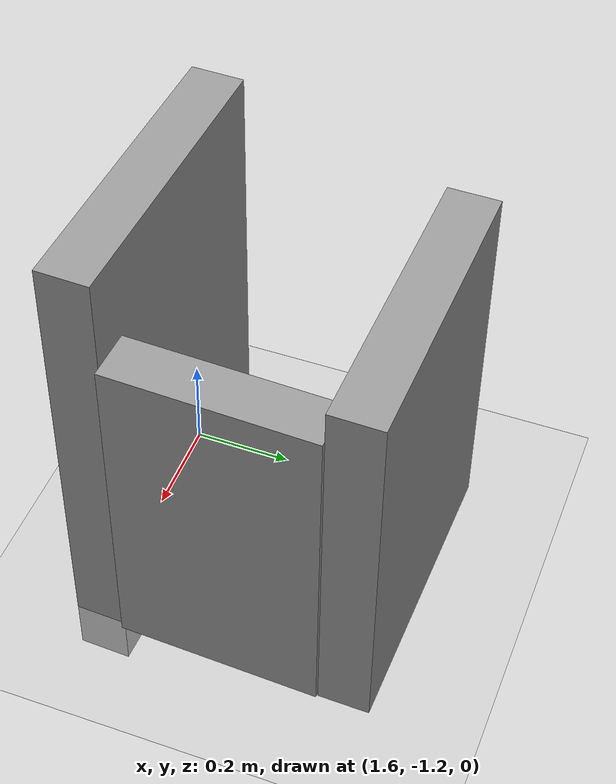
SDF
<sdf version="1.6">
 <world name="default">
  <light name="sun" type="directional">
   <pose>0 0 10 0 -0 0</pose>
   <diffuse>0.8 0.8 0.8 1</diffuse>
   <specular>0.2 0.2 0.2 1</specular>
   <attenuation>
    <range>1000</range>
    <constant>0.9</constant>
    <linear>0.01</linear>
    <quadratic>0.001</quadratic>
   </attenuation>
   <direction>-0.5 0.1 -0.9</direction>
  </light>
  <model name="ground_plane">
   <static>1</static>
   <link name="link">
    <collision name="collision">
     <geometry><plane><normal>0 0 1</normal><size>100 100</size></plane></geometry>
     <surface><friction><ode><mu>100</mu><mu2>50</mu2></ode></friction></surface>
    </collision>
    <visual name="visual">
     <cast_shadows>0</cast_shadows>
     <geometry><plane><normal>0 0 1</normal><size>100 100</size></plane></geometry>
     <material>
      <script><uri>file://media/materials/scripts/gazebo.material</uri><name>Gazebo/Grey</name></script>
     </material>
    </visual>
   </link>
  </model>
  <gravity>0 0 -9.8</gravity>
  <magnetic_field>6e-06 2.3e-05 -4.2e-05</magnetic_field>
  <atmosphere type="adiabatic"/>
  <physics name="default_physics" default="0" type="ode">
   <max_step_size>0.001</max_step_size>
   <real_time_factor>1</real_time_factor>
   <real_time_update_rate>1000</real_time_update_rate>
  </physics>
  <scene><ambient>0.4 0.4 0.4 1</ambient><background>0.7 0.7 0.7 1</background><shadows>1</shadows></scene>
  <audio><device>default</device></audio>
  <spherical_coordinates>
   <surface_model>EARTH_WGS84</surface_model>
   <latitude_deg>0</latitude_deg>
   <longitude_deg>0</longitude_deg>
   <elevation>0</elevation>
   <heading_deg>0</heading_deg>
  </spherical_coordinates>
  <model name="line04">
   <link name="link">
    <inertial>
     <mass>1</mass>
     <inertia>
      <ixx>0.166667</ixx>
      <ixy>0</ixy>
      <ixz>0</ixz>
      <iyy>0.166667</iyy>
      <iyz>0</iyz>
      <izz>0.166667</izz>
     </inertia>
    </inertial>
    <visual name="visual">
     <geometry><box><size>0.407583 0.100034 0.702887</size></box></geometry>
     <material>
      <script><name>Gazebo/Grey</name><uri>file://media/materials/scripts/gazebo.material</uri></script>
     </material>
    </visual>
    <collision name="collision">
     <geometry><box><size>0.407583 0.100034 0.702887</size></box></geometry>
     <surface>
      <friction>
       <ode><mu>1</mu><mu2>1</mu2><fdir1>0 0 0</fdir1><slip1>0</slip1><slip2>0</slip2></ode>
       <torsional>
        <coefficient>1</coefficient>
        <patch_radius>0</patch_radius>
        <surface_radius>0</surface_radius>
        <use_patch_radius>1</use_patch_radius>
        <ode><slip>0</slip></ode>
       </torsional>
      </friction>
      <bounce><restitution_coefficient>0</restitution_coefficient><threshold>1e+06</threshold></bounce>
      <contact>
       <collide_without_contact>0</collide_without_contact>
       <collide_without_contact_bitmask>1</collide_without_contact_bitmask>
       <collide_bitmask>1</collide_bitmask>
       <ode>
        <soft_cfm>0</soft_cfm>
        <soft_erp>0.2</soft_erp>
        <kp>1e+13</kp>
        <kd>1</kd>
        <max_vel>0.01</max_vel>
        <min_depth>0</min_depth>
       </ode>
       <bullet>
        <split_impulse>1</split_impulse>
        <split_impulse_penetration_threshold>-0.01</split_impulse_penetration_threshold>
        <soft_cfm>0</soft_cfm>
        <soft_erp>0.2</soft_erp>
        <kp>1e+13</kp>
        <kd>1</kd>
       </bullet>
      </contact>
     </surface>
    </collision>
   </link>
   <static>0</static>
   <pose>2.08052 -0.93735 0.351435 -1e-06 -3e-06 1.53485</pose>
  </model>
  <model name="line06">
   <link name="link">
    <inertial>
     <mass>1</mass>
     <inertia>
      <ixx>0.166667</ixx>
      <ixy>0</ixy>
      <ixz>0</ixz>
      <iyy>0.166667</iyy>
      <iyz>0</iyz>
      <izz>0.166667</izz>
     </inertia>
    </inertial>
    <visual name="visual">
     <geometry><box><size>0.102871 0.60054 1</size></box></geometry>
     <material>
      <script><name>Gazebo/Grey</name><uri>file://media/materials/scripts/gazebo.material</uri></script>
     </material>
    </visual>
    <collision name="collision">
     <geometry><box><size>0.102871 0.60054 1</size></box></geometry>
     <surface>
      <friction>
       <ode><mu>1</mu><mu2>1</mu2><fdir1>0 0 0</fdir1><slip1>0</slip1><slip2>0</slip2></ode>
       <torsional>
        <coefficient>1</coefficient>
        <patch_radius>0</patch_radius>
        <surface_radius>0</surface_radius>
        <use_patch_radius>1</use_patch_radius>
        <ode><slip>0</slip></ode>
       </torsional>
      </friction>
      <bounce><restitution_coefficient>0</restitution_coefficient><threshold>1e+06</threshold></bounce>
      <contact>
       <collide_without_contact>0</collide_without_contact>
       <collide_without_contact_bitmask>1</collide_without_contact_bitmask>
       <collide_bitmask>1</collide_bitmask>
       <ode>
        <soft_cfm>0</soft_cfm>
        <soft_erp>0.2</soft_erp>
        <kp>1e+13</kp>
        <kd>1</kd>
        <max_vel>0.01</max_vel>
        <min_depth>0</min_depth>
       </ode>
       <bullet>
        <split_impulse>1</split_impulse>
        <split_impulse_penetration_threshold>-0.01</split_impulse_penetration_threshold>
        <soft_cfm>0</soft_cfm>
        <soft_erp>0.2</soft_erp>
        <kp>1e+13</kp>
        <kd>1</kd>
       </bullet>
      </contact>
     </surface>
    </collision>
   </link>
   <static>0</static>
   <pose>1.8087 -1.18302 0.386458 1e-06 -0 -1.60678</pose>
  </model>
  <model name="line06_clone">
   <link name="link">
    <inertial>
     <mass>1</mass>
     <inertia>
      <ixx>0.166667</ixx>
      <ixy>0</ixy>
      <ixz>0</ixz>
      <iyy>0.166667</iyy>
      <iyz>0</iyz>
      <izz>0.166667</izz>
     </inertia>
    </inertial>
    <visual name="visual">
     <geometry><box><size>0.102871 0.60054 0.772916</size></box></geometry>
     <material>
      <script><name>Gazebo/Grey</name><uri>file://media/materials/scripts/gazebo.material</uri></script>
     </material>
    </visual>
    <collision name="collision">
     <geometry><box><size>0.102871 0.60054 0.772916</size></box></geometry>
     <surface>
      <friction>
       <ode><mu>1</mu><mu2>1</mu2><fdir1>0 0 0</fdir1><slip1>0</slip1><slip2>0</slip2></ode>
       <torsional>
        <coefficient>1</coefficient>
        <patch_radius>0</patch_radius>
        <surface_radius>0</surface_radius>
        <use_patch_radius>1</use_patch_radius>
        <ode><slip>0</slip></ode>
       </torsional>
      </friction>
      <bounce><restitution_coefficient>0</restitution_coefficient><threshold>1e+06</threshold></bounce>
      <contact>
       <collide_without_contact>0</collide_without_contact>
       <collide_without_contact_bitmask>1</collide_without_contact_bitmask>
       <collide_bitmask>1</collide_bitmask>
       <ode>
        <soft_cfm>0</soft_cfm>
        <soft_erp>0.2</soft_erp>
        <kp>1e+13</kp>
        <kd>1</kd>
        <max_vel>0.01</max_vel>
        <min_depth>0</min_depth>
       </ode>
       <bullet>
        <split_impulse>1</split_impulse>
        <split_impulse_penetration_threshold>-0.01</split_impulse_penetration_threshold>
        <soft_cfm>0</soft_cfm>
        <soft_erp>0.2</soft_erp>
        <kp>1e+13</kp>
        <kd>1</kd>
       </bullet>
      </contact>
     </surface>
    </collision>
   </link>
   <static>0</static>
   <pose>1.83411 -0.676394 0.386453 -2e-06 1e-06 -1.58993</pose>
  </model>
 </world>
</sdf>
